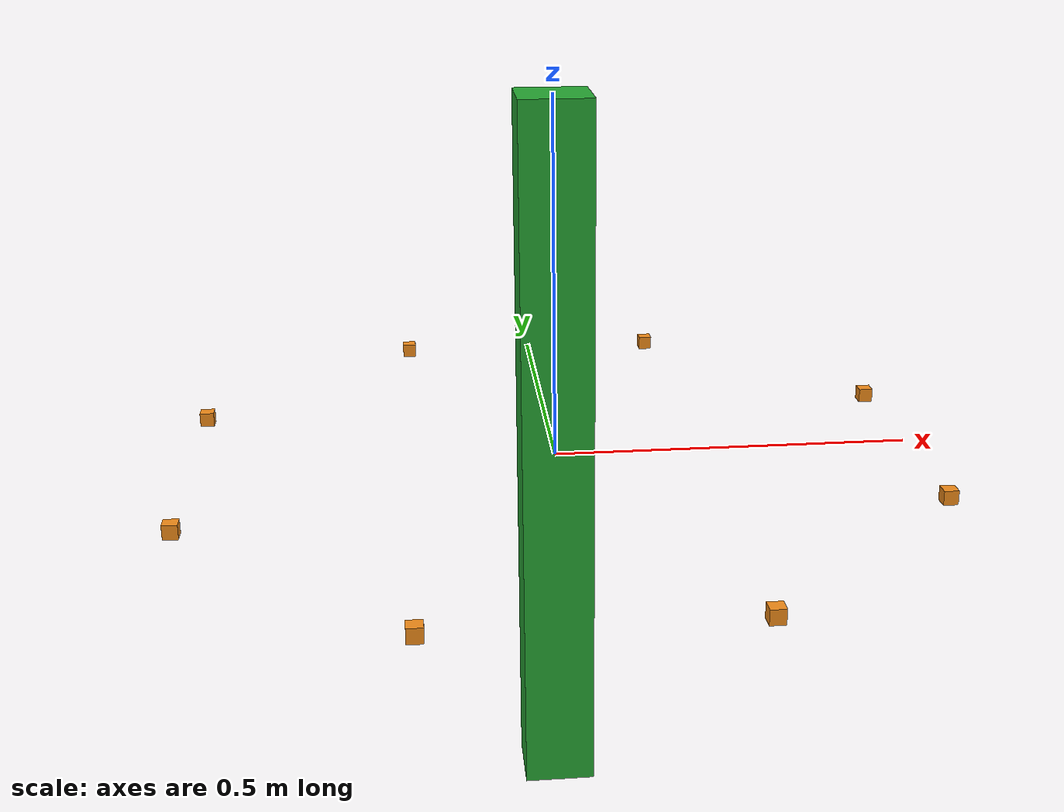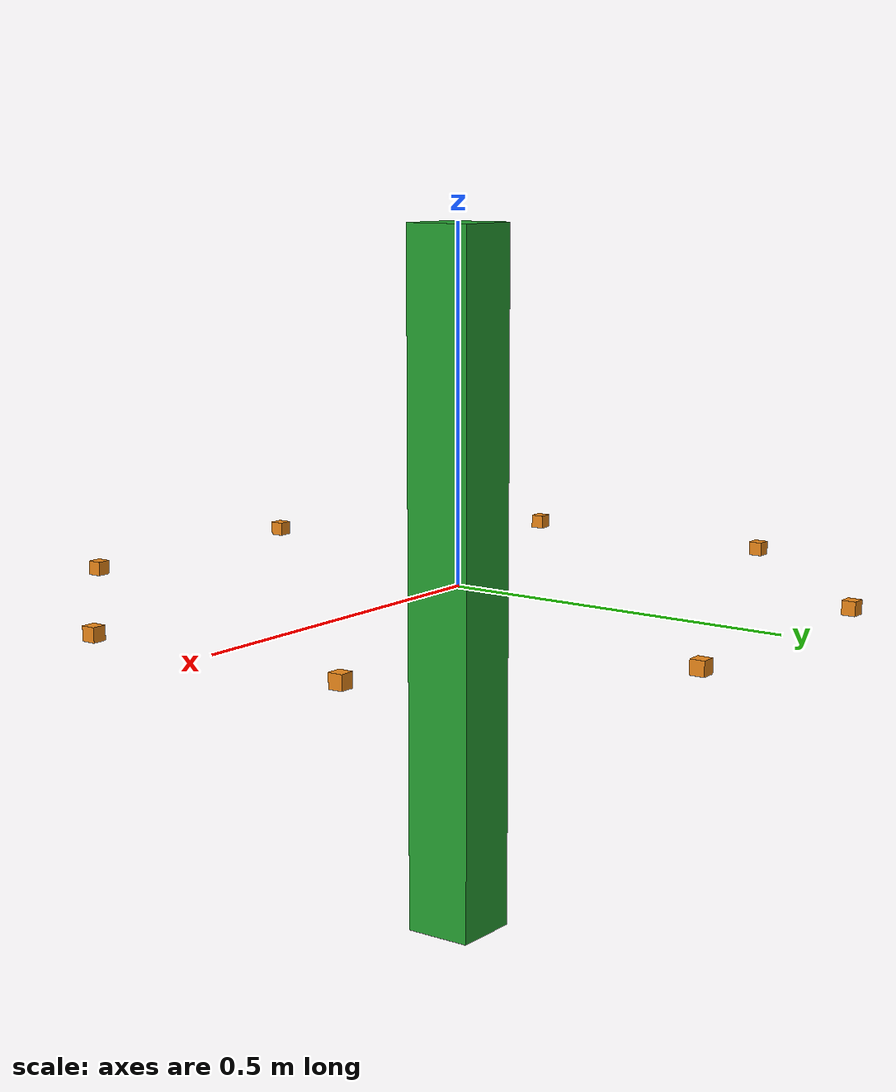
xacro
<?xml version="1.0"?>
<robot name="tigra" xmlns:xacro="http://www.ros.org/wiki/xacro">
<link name="base_footprint" />

<joint name="base_footprint_joint" type="fixed">
  <parent link="base_footprint" />
  <child link="base_link" />
</joint>

    <xacro:property name="mass" value="1" />
    <xacro:property name="width" value="0.1" />
    <xacro:property name="height1" value="1" />

    <xacro:property name="cam_mass" value="0"/>
    <xacro:property name="cam_size" value="0.02" />

    <xacro:property name="degrees_90" value="${pi/2}"/>
    <xacro:property name="degrees_180" value="${pi}"/>

    <xacro:property name="robot_name" value="tigra" />

<!-- BASE LINK DESCRIPTION -->
    <link name="base_link">
        <collision>
            <origin xyz="0 0 0" rpy="0 0 0" />
            <geometry>
                <box size="${width} ${width} ${height1}" />
            </geometry>
        </collision>

        <visual>
            <origin xyz="0 0 0" rpy="0 0 0" />
            <geometry>
                <box size="${width} ${width} ${height1}" />
            </geometry>
            <material name="green" />
        </visual>

        <inertial>
        <origin xyz="0 0 0" rpy="0 0 0"/>
        <mass value="${mass}"/>
        <inertia
        ixx="${mass / 12.0 * (width*width + height1*height1)}" ixy="0.0" ixz="0.0"
        iyy="${mass / 12.0 * (height1*height1 + width*width)}" iyz="0.0"
        izz="${mass / 12.0 * (width*width + width*width)}"/>
        </inertial>

    </link>

    <gazebo reference="base_link">
        <material>Gazebo/Green</material>
    </gazebo>
<!-- BASE LINK DESCRIPTION -->

<!-- START MACROS FOR VISUAL CAM -->
    <xacro:macro name="camera_link" params="name direction position">
        <link name="${direction}_${position}_cam_frame">
            <visual>
                <origin xyz="0 0 0" rpy="0 0 0" />
                <geometry>
                    <box size="${cam_size} ${cam_size} ${cam_size}" />
                </geometry>
            </visual>

            <collision>
                <origin xyz="0 0 0" rpy="0 0 0" />
                <geometry>
                    <box size="${cam_size} ${cam_size} ${cam_size}" />
                </geometry>
            </collision>

            <inertial>
                <mass value="1e-5" />
                <origin xyz="0 0 0" rpy="0 0 0"/>
                <inertia ixx="1e-6" ixy="0" ixz="0" iyy="1e-6" iyz="0" izz="1e-6" />
            </inertial>
        </link>
    </xacro:macro>
<!-- END MACROS FOR VISUAL CAM -->

<!-- START MACROS FOR CREATE CAM IN THE GAZEBO -->

    <xacro:macro name="single_camera" params="name direction position xyz rpy fov">

        <xacro:camera_link name="${name}" direction="${direction}" position="${position}" />

        <joint name="${direction}_${position}_joint" type="fixed">
            <child link="${direction}_${position}_cam_frame" />
            <parent link="base_link" />
            <origin xyz="${xyz}" rpy="${rpy}" />
        </joint>

        <link name="${direction}_${position}_optical_frame" />

        <joint name="${direction}_${position}_optical_joint" type="fixed">
            <child link="${direction}_${position}_optical_frame" />
            <parent link="${direction}_${position}_cam_frame" />
            <origin xyz="0 0 0" rpy="-${degrees_90} 0.0 -${degrees_90}" />
        </joint>

        <gazebo reference="${direction}_${position}_cam_frame">
            <material>Gazebo/Orange</material>

            <sensor type="camera" name="${direction}_${position}_cam">
                <update_rate>30.0</update_rate>
                <camera name="${direction}_${position}_cam">
                    <horizontal_fov>${fov}</horizontal_fov>
                    <image>
                        <width>800</width>
                        <height>600</height>
                        <format>R8G8B8</format>
                    </image>
                    <clip>
                        <near>0.02</near>
                        <far>300</far>
                    </clip>
                    <noise>
                        <type>gaussian</type>
                        <mean>0.0</mean>
                        <stddev>0.001</stddev>
                    </noise>
                </camera>
                <plugin name="${direction}_${position}_cam_controller" filename="libgazebo_ros_camera.so">
                    <alwaysOn>true</alwaysOn>
                    <updateRate>30.0</updateRate>
                    <cameraName>${robot_name}/${direction}/${position}</cameraName>
                    <imageTopicName>image_raw</imageTopicName>
                    <frameName>${direction}_${position}_optical_frame</frameName>
                    <hackBaseline>0.07</hackBaseline>
                    <distortionK1>0.0</distortionK1>
                    <distortionK2>0.0</distortionK2>
                    <distortionK3>0.0</distortionK3>
                    <distortionT1>0.0</distortionT1>
                    <distortionT2>0.0</distortionT2>
                </plugin>
            </sensor>
        </gazebo>
    </xacro:macro>
<!-- END MACROS FOR CREATE CAM IN THE GAZEBO -->

    <xacro:single_camera name="front_direction_left" direction="front" position="left" xyz="0.5 0.2 0" rpy="0 0 0" fov="1.3962634" />
    <xacro:single_camera name="front_direction_right" direction="front" position="right" xyz="0.5 -0.2 0" rpy="0 0 0" fov="1.3962634" />

    <xacro:single_camera name="backside_direction_left" direction="backside" position="left" xyz="-0.5 -0.2 0" rpy="0 0.0 ${degrees_180}" fov="1.3962634" />
    <xacro:single_camera name="backside_direction_right" direction="backside" position="right" xyz="-0.5 0.2 0" rpy="0 0.0 ${degrees_180}" fov="1.3962634" />

    <xacro:single_camera name="rightside_direction_left" direction="rightside" position="left" xyz="0.2 -0.5 0" rpy="0 0.0 -${degrees_90}" fov="1.3962634" />
    <xacro:single_camera name="rightside_direction_right" direction="rightside" position="right" xyz="-0.2 -0.5 0" rpy="0 0.0 -${degrees_90}" fov="1.3962634" />

    <xacro:single_camera name="leftside_direction_left" direction="leftside" position="left" xyz="-0.2 0.5 0" rpy="0 0.0 ${degrees_90}" fov="1.3962634" />
    <xacro:single_camera name="leftside_direction_right" direction="leftside" position="right" xyz="0.2 0.5 0" rpy="0 0.0 ${degrees_90}" fov="1.3962634" />
</robot>
